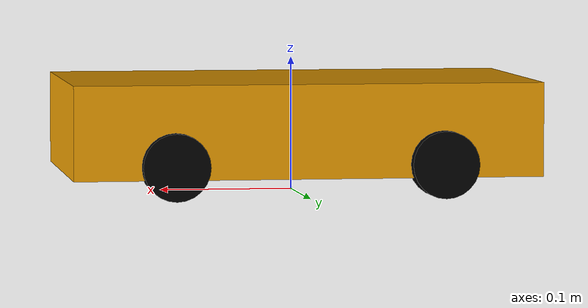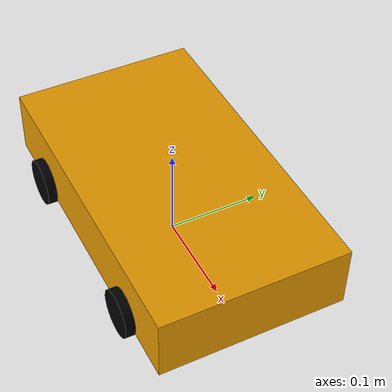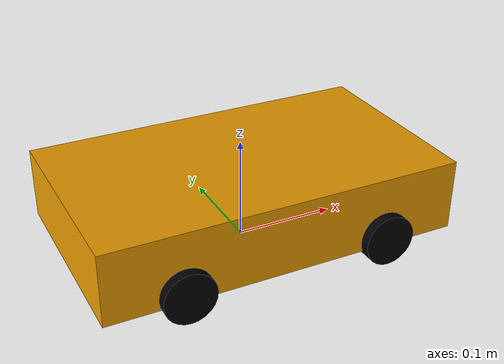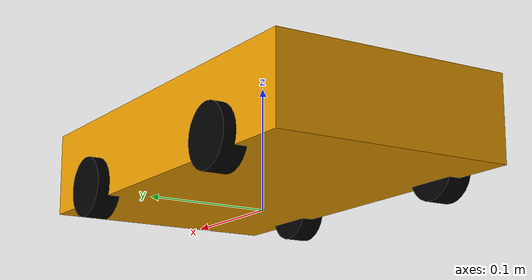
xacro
<?xml version="1.0" ?>
<robot xmlns:xacro="http://ros.org/wiki/xacro">

    <xacro:property name="PI"  value="3.1415926"/>

    <xacro:property name="car_length"  value="0.35"/>
    <xacro:property name="car_width"  value="0.2"/>
    <xacro:property name="car_height"  value="0.07"/>

    <xacro:property name="wheel_radius"  value="0.025"/>
    <xacro:property name="wheel_length"  value="0.02"/>

    <xacro:property name="wheel_joint_x" value="${car_length/3.5}"/>
    <xacro:property name="wheel_joint_y" value="${car_width / 2}"/>
    <xacro:property name="wheel_joint_z" value="${-(car_height / 2 + distance - wheel_radius)}"/>

    <xacro:property name="distance"  value="0.015"/>

    <material name="yellow">
        <color rgba="0.9 0.6 0.0 1.0"/>
    </material>
    <material name="black">
        <color rgba="0.0 0.0 0.0 1.0"/>
    </material>

    <link name="base_footprint">
        <visual>
                <geometry>
                    <sphere radius="0.001"/>
                </geometry>
        </visual>
    </link>

    <link name="base_link">
        <visual>
            <geometry>
                <box size="${car_length} ${car_width} ${car_height}"/>
            </geometry>
            <material name="yellow"/>
        </visual>
        <collision>
            <geometry>
                <box size="${car_length} ${car_width} ${car_height}"/>
            </geometry>
        </collision>
        <inertial>
            <mass value="1.0"/>
            <origin xyz="0 0 0"/>
            <inertia ixx="0.002" ixy="0.0" ixz="0.0"
                     iyy="0.002" iyz="0.0"
                     izz="0.004"/>
        </inertial>
    </link>

    <joint name="base_link_to_base_footprint" type="fixed">
        <parent link="base_footprint"/>
        <child link="base_link"/>
        <origin xyz="0.0 0.0 ${car_height/2 + distance}" rpy="0.0 0.0 0.0"/>
    </joint>

    <xacro:macro name="wheel_func" params="link_name front_flag left_flag">
        <link name="${link_name}">
            <visual>
                <geometry>
                    <cylinder radius="${wheel_radius}" length="${wheel_length}"/>
                </geometry>
                <material name="black"/>
                <origin rpy="${PI / 2} 0.0 0.0"/>
            </visual>
            <collision>
                <geometry>
                    <cylinder radius="${wheel_radius}" length="${wheel_length}"/>
                </geometry>
                <origin rpy="${PI / 2} 0.0 0.0"/>
            </collision>
            <inertial>
                <mass value="0.2"/>
                <origin xyz="0 0 0"/>
                <inertia ixx="0.0001" ixy="0.0" ixz="0.0"
                         iyy="0.0001" iyz="0.0"
                         izz="0.0002"/>
            </inertial>
        </link>
        <joint name="${link_name}_to_base_link" type="continuous">
            <parent link="base_link"/>
            <child link="${link_name}"/>
            <origin xyz="${wheel_joint_x * front_flag} ${wheel_joint_y * left_flag} ${wheel_joint_z}"/>
            <axis xyz="0.0 1.0 0.0"/>
        </joint>
    </xacro:macro>

    <xacro:wheel_func link_name="front_left" front_flag="1" left_flag="1"/>
    <xacro:wheel_func link_name="front_right" front_flag="1" left_flag="-1"/>
    <xacro:wheel_func link_name="back_left" front_flag="-1" left_flag="1"/>
    <xacro:wheel_func link_name="back_right" front_flag="-1" left_flag="-1"/>

    <!-- Plugin for wheels -->
    <gazebo>
        <plugin name="diff_drive_controller" filename="libgazebo_ros_diff_drive.so">

            <left_joint>front_left_to_base_link</left_joint>
            <right_joint>front_right_to_base_link</right_joint>

            <wheel_separation>${car_width}</wheel_separation>
            <wheel_diameter>${wheel_radius*2}</wheel_diameter>

            <odometry_frame>odom</odometry_frame>
            <robot_base_frame>base_footprint</robot_base_frame>

            <max_wheel_torque>1</max_wheel_torque>
            <max_wheel_acceleration>2.0</max_wheel_acceleration>

            <publish_odom>true</publish_odom>
            <publish_odom_tf>true</publish_odom_tf>
            <publish_wheel_tf>false</publish_wheel_tf>

        </plugin>
    </gazebo>

    <gazebo reference="base_link">
        <material>Gazebo/Yellow</material>
    </gazebo>

    <gazebo reference="front_left">
        <material>Gazebo/Black</material>
    </gazebo>
    <gazebo reference="front_right">
        <material>Gazebo/Black</material>
    </gazebo>
    <gazebo reference="back_left">
        <material>Gazebo/Black</material>
    </gazebo>
    <gazebo reference="back_right">
        <material>Gazebo/Black</material>
    </gazebo>
</robot>
